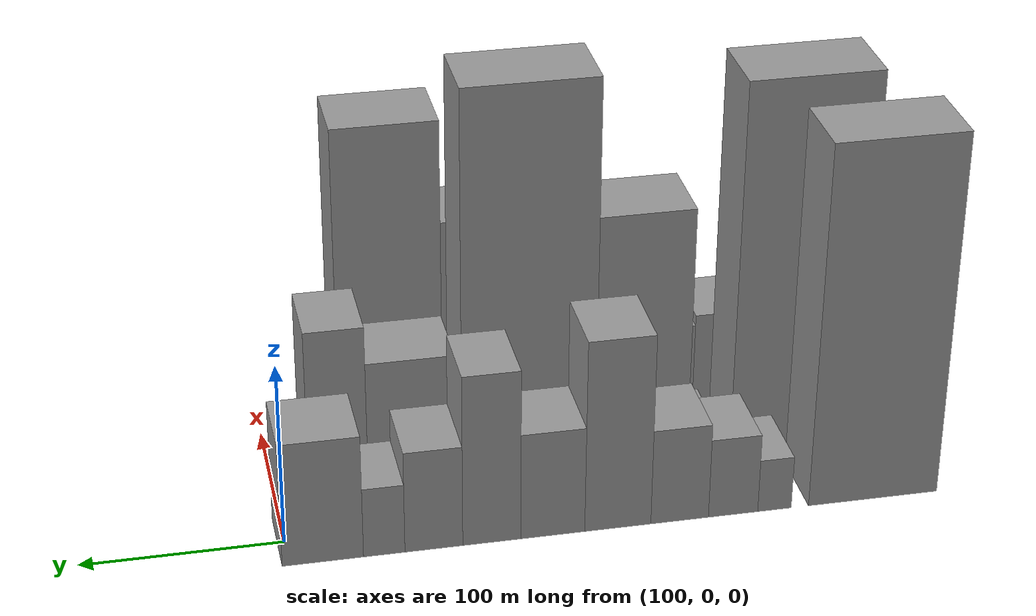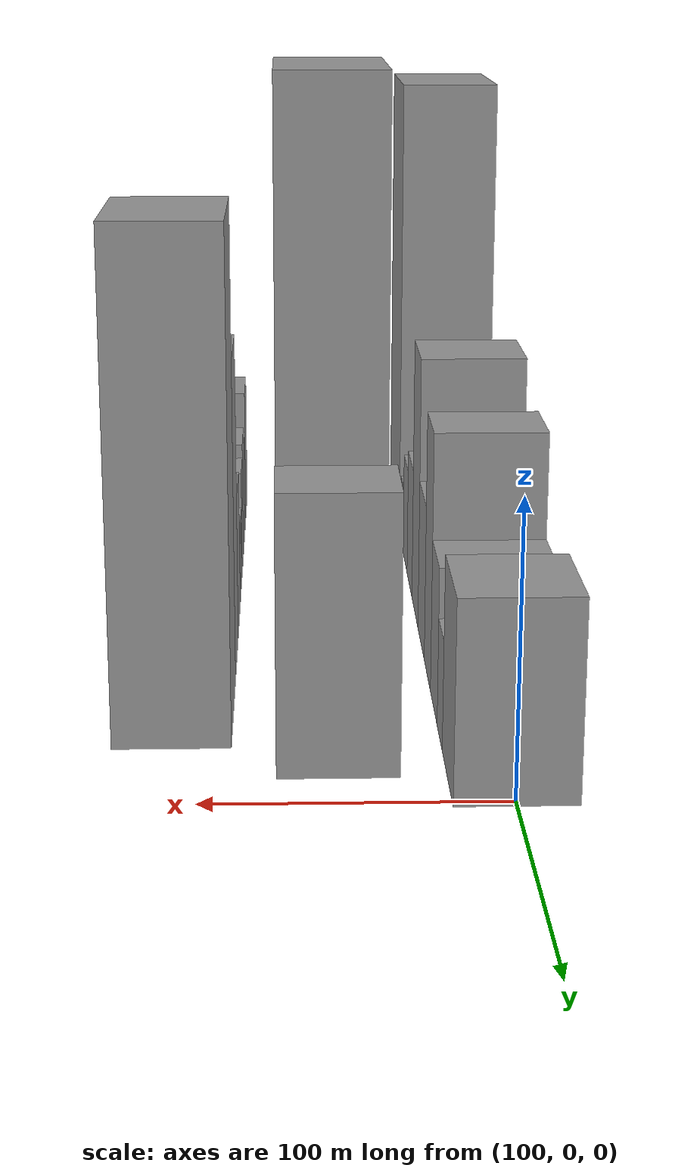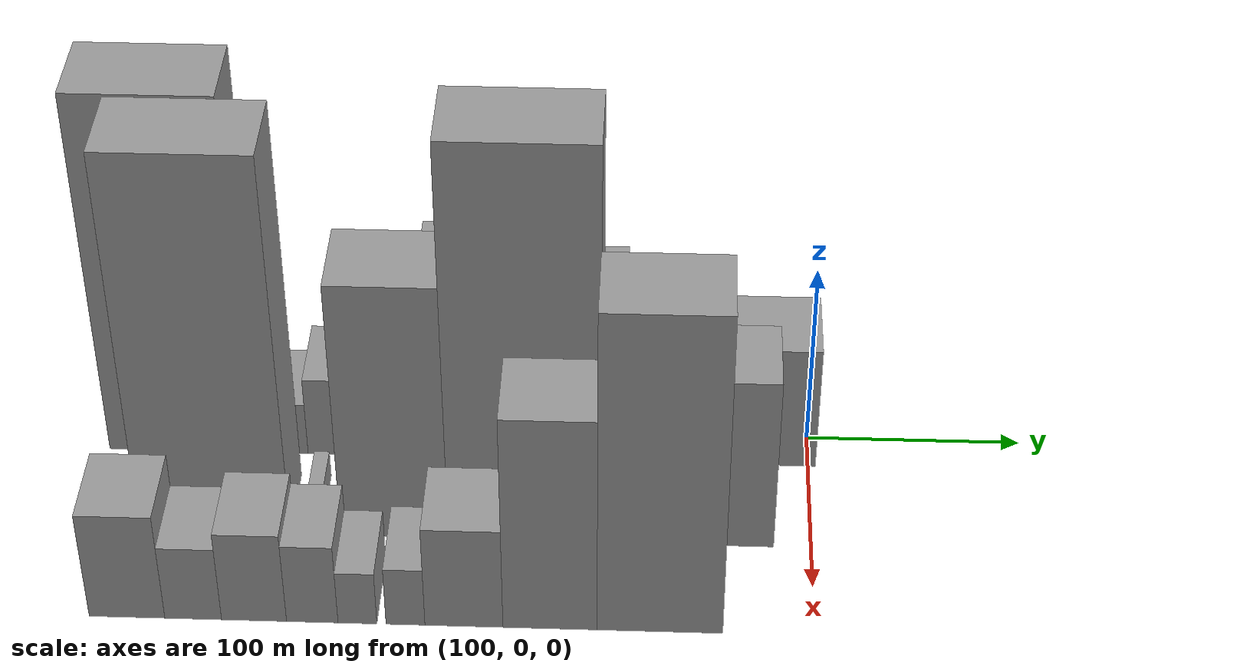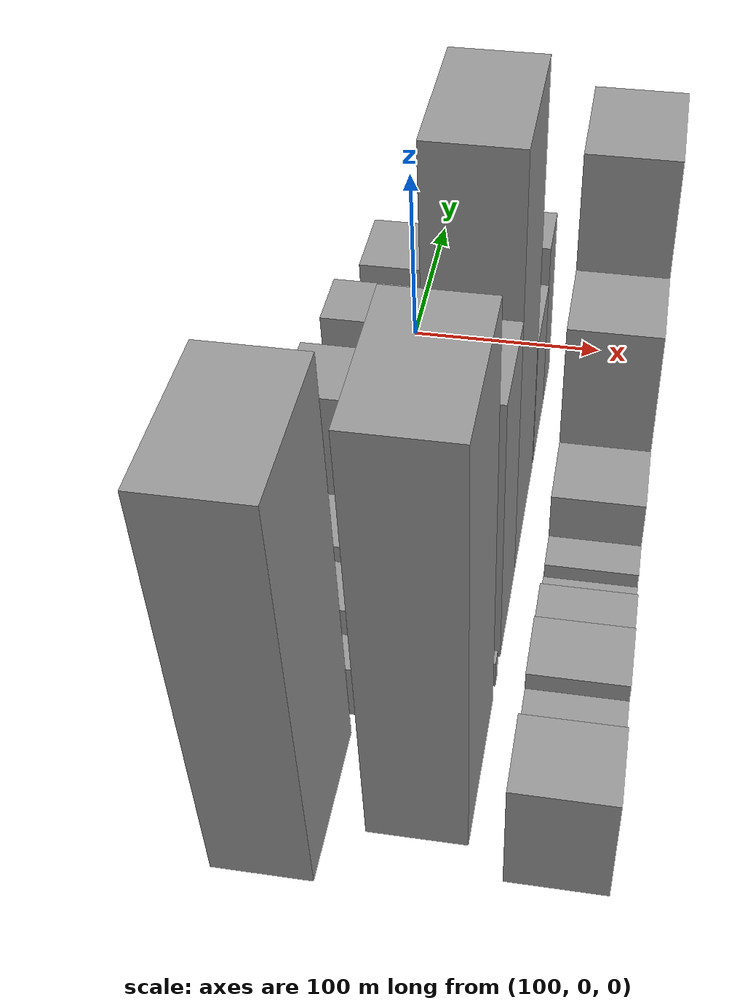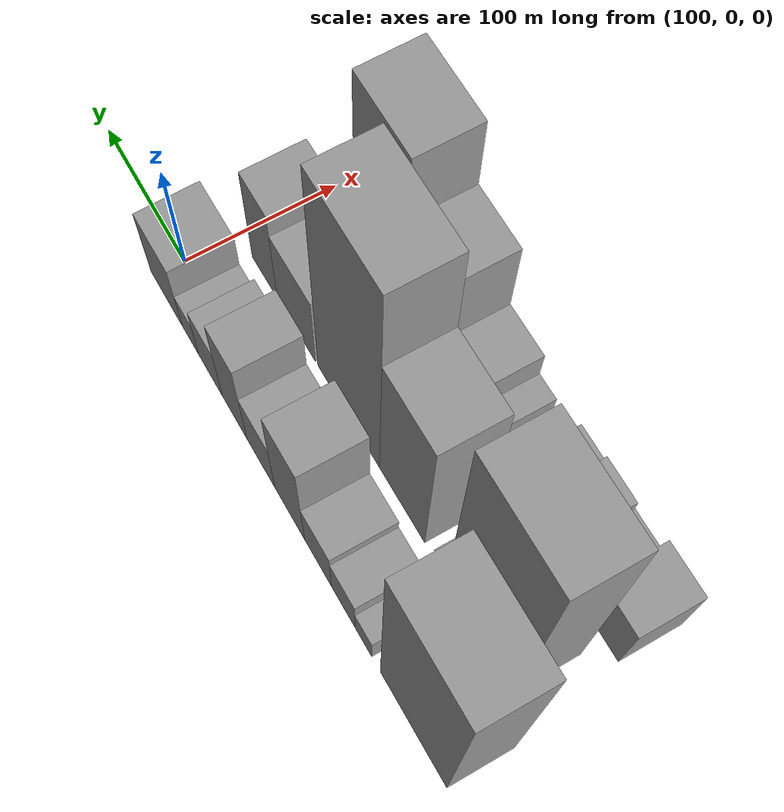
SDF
<sdf version="1.6">
 <world name="default">
  <model name="building_8">
   <static>1</static>
   <pose>100.0000 -294.7436 0 0.000000 0.000000 0.000000</pose>
   <link name="link">
    <pose>0 0 100.50 0 0 0</pose>
    <collision name="collision"><geometry><box><size>40.0000 67.3630 201.0000</size></box></geometry></collision>
    <visual name="visual">
     <cast_shadows>0</cast_shadows>
     <geometry><box><size>40.0000 67.3630 201.0000</size></box></geometry>
     <material>
      <script>
       <uri>model://grey_wall/materials/scripts</uri>
       <uri>model://grey_wall/materials/textures</uri>
       <name>vrc/grey_wall</name>
      </script>
     </material>
    </visual>
   </link>
  </model>
  <model name="building_9">
   <static>1</static>
   <pose>100.0000 -243.3653 0 0.000000 0.000000 0.000000</pose>
   <link name="link">
    <pose>0 0 15.00 0 0 0</pose>
    <collision name="collision"><geometry><box><size>40.0000 17.3937 30.0000</size></box></geometry></collision>
    <visual name="visual">
     <cast_shadows>0</cast_shadows>
     <geometry><box><size>40.0000 17.3937 30.0000</size></box></geometry>
     <material>
      <script>
       <uri>model://grey_wall/materials/scripts</uri>
       <uri>model://grey_wall/materials/textures</uri>
       <name>vrc/grey_wall</name>
      </script>
     </material>
    </visual>
   </link>
  </model>
  <model name="building_10">
   <static>1</static>
   <pose>100.0000 -221.9480 0 0.000000 0.000000 0.000000</pose>
   <link name="link">
    <pose>0 0 22.50 0 0 0</pose>
    <collision name="collision"><geometry><box><size>40.0000 25.4409 45.0000</size></box></geometry></collision>
    <visual name="visual">
     <cast_shadows>0</cast_shadows>
     <geometry><box><size>40.0000 25.4409 45.0000</size></box></geometry>
     <material>
      <script>
       <uri>model://grey_wall/materials/scripts</uri>
       <uri>model://grey_wall/materials/textures</uri>
       <name>vrc/grey_wall</name>
      </script>
     </material>
    </visual>
   </link>
  </model>
  <model name="building_11">
   <static>1</static>
   <pose>100.0000 -194.4827 0 0.000000 0.000000 0.000000</pose>
   <link name="link">
    <pose>0 0 27.00 0 0 0</pose>
    <collision name="collision"><geometry><box><size>40.0000 29.4895 54.0000</size></box></geometry></collision>
    <visual name="visual">
     <cast_shadows>0</cast_shadows>
     <geometry><box><size>40.0000 29.4895 54.0000</size></box></geometry>
     <material>
      <script>
       <uri>model://grey_wall/materials/scripts</uri>
       <uri>model://grey_wall/materials/textures</uri>
       <name>vrc/grey_wall</name>
      </script>
     </material>
    </visual>
   </link>
  </model>
  <model name="building_12">
   <static>1</static>
   <pose>100.0000 -162.9726 0 0.000000 0.000000 0.000000</pose>
   <link name="link">
    <pose>0 0 54.00 0 0 0</pose>
    <collision name="collision"><geometry><box><size>40.0000 33.5308 108.0000</size></box></geometry></collision>
    <visual name="visual">
     <cast_shadows>0</cast_shadows>
     <geometry><box><size>40.0000 33.5308 108.0000</size></box></geometry>
     <material>
      <script>
       <uri>model://grey_wall/materials/scripts</uri>
       <uri>model://grey_wall/materials/textures</uri>
       <name>vrc/grey_wall</name>
      </script>
     </material>
    </visual>
   </link>
  </model>
  <model name="building_13">
   <static>1</static>
   <pose>100.0000 -130.0925 0 0.000000 0.000000 0.000000</pose>
   <link name="link">
    <pose>0 0 30.00 0 0 0</pose>
    <collision name="collision"><geometry><box><size>40.0000 32.2293 60.0000</size></box></geometry></collision>
    <visual name="visual">
     <cast_shadows>0</cast_shadows>
     <geometry><box><size>40.0000 32.2293 60.0000</size></box></geometry>
     <material>
      <script>
       <uri>model://grey_wall/materials/scripts</uri>
       <uri>model://grey_wall/materials/textures</uri>
       <name>vrc/grey_wall</name>
      </script>
     </material>
    </visual>
   </link>
  </model>
  <model name="building_14">
   <static>1</static>
   <pose>100.0000 -99.5629 0 0.000000 0.000000 0.000000</pose>
   <link name="link">
    <pose>0 0 48.00 0 0 0</pose>
    <collision name="collision"><geometry><box><size>40.0000 28.8300 96.0000</size></box></geometry></collision>
    <visual name="visual">
     <cast_shadows>0</cast_shadows>
     <geometry><box><size>40.0000 28.8300 96.0000</size></box></geometry>
     <material>
      <script>
       <uri>model://grey_wall/materials/scripts</uri>
       <uri>model://grey_wall/materials/textures</uri>
       <name>vrc/grey_wall</name>
      </script>
     </material>
    </visual>
   </link>
  </model>
  <model name="building_15">
   <static>1</static>
   <pose>100.0000 -70.8435 0 0.000000 0.000000 0.000000</pose>
   <link name="link">
    <pose>0 0 28.50 0 0 0</pose>
    <collision name="collision"><geometry><box><size>40.0000 28.6087 57.0000</size></box></geometry></collision>
    <visual name="visual">
     <cast_shadows>0</cast_shadows>
     <geometry><box><size>40.0000 28.6087 57.0000</size></box></geometry>
     <material>
      <script>
       <uri>model://grey_wall/materials/scripts</uri>
       <uri>model://grey_wall/materials/textures</uri>
       <name>vrc/grey_wall</name>
      </script>
     </material>
    </visual>
   </link>
  </model>
  <model name="building_16">
   <static>1</static>
   <pose>100.0000 -46.3662 0 0.000000 0.000000 0.000000</pose>
   <link name="link">
    <pose>0 0 19.50 0 0 0</pose>
    <collision name="collision"><geometry><box><size>40.0000 20.3460 39.0000</size></box></geometry></collision>
    <visual name="visual">
     <cast_shadows>0</cast_shadows>
     <geometry><box><size>40.0000 20.3460 39.0000</size></box></geometry>
     <material>
      <script>
       <uri>model://grey_wall/materials/scripts</uri>
       <uri>model://grey_wall/materials/textures</uri>
       <name>vrc/grey_wall</name>
      </script>
     </material>
    </visual>
   </link>
  </model>
  <model name="building_17">
   <static>1</static>
   <pose>100.0000 -16.3731 0 0.000000 0.000000 0.000000</pose>
   <link name="link">
    <pose>0 0 34.50 0 0 0</pose>
    <collision name="collision"><geometry><box><size>40.0000 39.6402 69.0000</size></box></geometry></collision>
    <visual name="visual">
     <cast_shadows>0</cast_shadows>
     <geometry><box><size>40.0000 39.6402 69.0000</size></box></geometry>
     <material>
      <script>
       <uri>model://grey_wall/materials/scripts</uri>
       <uri>model://grey_wall/materials/textures</uri>
       <name>vrc/grey_wall</name>
      </script>
     </material>
    </visual>
   </link>
  </model>
  <model name="building_43">
   <static>1</static>
   <pose>155.0000 -270.3994 0 0.000000 0.000000 0.000000</pose>
   <link name="link">
    <pose>0 0 105.00 0 0 0</pose>
    <collision name="collision"><geometry><box><size>40.0000 68.9399 210.0000</size></box></geometry></collision>
    <visual name="visual">
     <cast_shadows>0</cast_shadows>
     <geometry><box><size>40.0000 68.9399 210.0000</size></box></geometry>
     <material>
      <script>
       <uri>model://grey_wall/materials/scripts</uri>
       <uri>model://grey_wall/materials/textures</uri>
       <name>vrc/grey_wall</name>
      </script>
     </material>
    </visual>
   </link>
  </model>
  <model name="building_44">
   <static>1</static>
   <pose>155.0000 -225.4750 0 0.000000 0.000000 0.000000</pose>
   <link name="link">
    <pose>0 0 7.50 0 0 0</pose>
    <collision name="collision"><geometry><box><size>40.0000 6.9090 15.0000</size></box></geometry></collision>
    <visual name="visual">
     <cast_shadows>0</cast_shadows>
     <geometry><box><size>40.0000 6.9090 15.0000</size></box></geometry>
     <material>
      <script>
       <uri>model://grey_wall/materials/scripts</uri>
       <uri>model://grey_wall/materials/textures</uri>
       <name>vrc/grey_wall</name>
      </script>
     </material>
    </visual>
   </link>
  </model>
  <model name="building_45">
   <static>1</static>
   <pose>155.0000 -188.6110 0 0.000000 0.000000 0.000000</pose>
   <link name="link">
    <pose>0 0 72.00 0 0 0</pose>
    <collision name="collision"><geometry><box><size>40.0000 48.8191 144.0000</size></box></geometry></collision>
    <visual name="visual">
     <cast_shadows>0</cast_shadows>
     <geometry><box><size>40.0000 48.8191 144.0000</size></box></geometry>
     <material>
      <script>
       <uri>model://grey_wall/materials/scripts</uri>
       <uri>model://grey_wall/materials/textures</uri>
       <name>vrc/grey_wall</name>
      </script>
     </material>
    </visual>
   </link>
  </model>
  <model name="building_46">
   <static>1</static>
   <pose>155.0000 -129.6218 0 0.000000 0.000000 0.000000</pose>
   <link name="link">
    <pose>0 0 109.50 0 0 0</pose>
    <collision name="collision"><geometry><box><size>40.0000 69.1592 219.0000</size></box></geometry></collision>
    <visual name="visual">
     <cast_shadows>0</cast_shadows>
     <geometry><box><size>40.0000 69.1592 219.0000</size></box></geometry>
     <material>
      <script>
       <uri>model://grey_wall/materials/scripts</uri>
       <uri>model://grey_wall/materials/textures</uri>
       <name>vrc/grey_wall</name>
      </script>
     </material>
    </visual>
   </link>
  </model>
  <model name="building_47">
   <static>1</static>
   <pose>155.0000 -69.5526 0 0.000000 0.000000 0.000000</pose>
   <link name="link">
    <pose>0 0 37.50 0 0 0</pose>
    <collision name="collision"><geometry><box><size>40.0000 44.9793 75.0000</size></box></geometry></collision>
    <visual name="visual">
     <cast_shadows>0</cast_shadows>
     <geometry><box><size>40.0000 44.9793 75.0000</size></box></geometry>
     <material>
      <script>
       <uri>model://grey_wall/materials/scripts</uri>
       <uri>model://grey_wall/materials/textures</uri>
       <name>vrc/grey_wall</name>
      </script>
     </material>
    </visual>
   </link>
  </model>
  <model name="building_48">
   <static>1</static>
   <pose>155.0000 -32.0475 0 0.000000 0.000000 0.000000</pose>
   <link name="link">
    <pose>0 0 48.00 0 0 0</pose>
    <collision name="collision"><geometry><box><size>40.0000 30.0308 96.0000</size></box></geometry></collision>
    <visual name="visual">
     <cast_shadows>0</cast_shadows>
     <geometry><box><size>40.0000 30.0308 96.0000</size></box></geometry>
     <material>
      <script>
       <uri>model://grey_wall/materials/scripts</uri>
       <uri>model://grey_wall/materials/textures</uri>
       <name>vrc/grey_wall</name>
      </script>
     </material>
    </visual>
   </link>
  </model>
  <model name="building_76">
   <static>1</static>
   <pose>210.0000 -301.1250 0 0.000000 0.000000 0.000000</pose>
   <link name="link">
    <pose>0 0 30.00 0 0 0</pose>
    <collision name="collision"><geometry><box><size>40.0000 33.3375 60.0000</size></box></geometry></collision>
    <visual name="visual">
     <cast_shadows>0</cast_shadows>
     <geometry><box><size>40.0000 33.3375 60.0000</size></box></geometry>
     <material>
      <script>
       <uri>model://grey_wall/materials/scripts</uri>
       <uri>model://grey_wall/materials/textures</uri>
       <name>vrc/grey_wall</name>
      </script>
     </material>
    </visual>
   </link>
  </model>
  <model name="building_77">
   <static>1</static>
   <pose>210.0000 -271.9601 0 0.000000 0.000000 0.000000</pose>
   <link name="link">
    <pose>0 0 21.00 0 0 0</pose>
    <collision name="collision"><geometry><box><size>40.0000 24.9923 42.0000</size></box></geometry></collision>
    <visual name="visual">
     <cast_shadows>0</cast_shadows>
     <geometry><box><size>40.0000 24.9923 42.0000</size></box></geometry>
     <material>
      <script>
       <uri>model://grey_wall/materials/scripts</uri>
       <uri>model://grey_wall/materials/textures</uri>
       <name>vrc/grey_wall</name>
      </script>
     </material>
    </visual>
   </link>
  </model>
  <model name="building_78">
   <static>1</static>
   <pose>210.0000 -245.1800 0 0.000000 0.000000 0.000000</pose>
   <link name="link">
    <pose>0 0 25.50 0 0 0</pose>
    <collision name="collision"><geometry><box><size>40.0000 28.5679 51.0000</size></box></geometry></collision>
    <visual name="visual">
     <cast_shadows>0</cast_shadows>
     <geometry><box><size>40.0000 28.5679 51.0000</size></box></geometry>
     <material>
      <script>
       <uri>model://grey_wall/materials/scripts</uri>
       <uri>model://grey_wall/materials/textures</uri>
       <name>vrc/grey_wall</name>
      </script>
     </material>
    </visual>
   </link>
  </model>
  <model name="building_79">
   <static>1</static>
   <pose>210.0000 -219.5943 0 0.000000 0.000000 0.000000</pose>
   <link name="link">
    <pose>0 0 22.50 0 0 0</pose>
    <collision name="collision"><geometry><box><size>40.0000 22.6035 45.0000</size></box></geometry></collision>
    <visual name="visual">
     <cast_shadows>0</cast_shadows>
     <geometry><box><size>40.0000 22.6035 45.0000</size></box></geometry>
     <material>
      <script>
       <uri>model://grey_wall/materials/scripts</uri>
       <uri>model://grey_wall/materials/textures</uri>
       <name>vrc/grey_wall</name>
      </script>
     </material>
    </visual>
   </link>
  </model>
  <model name="building_80">
   <static>1</static>
   <pose>210.0000 -199.7600 0 0.000000 0.000000 0.000000</pose>
   <link name="link">
    <pose>0 0 15.00 0 0 0</pose>
    <collision name="collision"><geometry><box><size>40.0000 17.0651 30.0000</size></box></geometry></collision>
    <visual name="visual">
     <cast_shadows>0</cast_shadows>
     <geometry><box><size>40.0000 17.0651 30.0000</size></box></geometry>
     <material>
      <script>
       <uri>model://grey_wall/materials/scripts</uri>
       <uri>model://grey_wall/materials/textures</uri>
       <name>vrc/grey_wall</name>
      </script>
     </material>
    </visual>
   </link>
  </model>
  <model name="building_81">
   <static>1</static>
   <pose>210.0000 -178.7009 0 0.000000 0.000000 0.000000</pose>
   <link name="link">
    <pose>0 0 16.50 0 0 0</pose>
    <collision name="collision"><geometry><box><size>40.0000 17.0532 33.0000</size></box></geometry></collision>
    <visual name="visual">
     <cast_shadows>0</cast_shadows>
     <geometry><box><size>40.0000 17.0532 33.0000</size></box></geometry>
     <material>
      <script>
       <uri>model://grey_wall/materials/scripts</uri>
       <uri>model://grey_wall/materials/textures</uri>
       <name>vrc/grey_wall</name>
      </script>
     </material>
    </visual>
   </link>
  </model>
  <model name="building_82">
   <static>1</static>
   <pose>210.0000 -153.1122 0 0.000000 0.000000 0.000000</pose>
   <link name="link">
    <pose>0 0 28.50 0 0 0</pose>
    <collision name="collision"><geometry><box><size>40.0000 34.1241 57.0000</size></box></geometry></collision>
    <visual name="visual">
     <cast_shadows>0</cast_shadows>
     <geometry><box><size>40.0000 34.1241 57.0000</size></box></geometry>
     <material>
      <script>
       <uri>model://grey_wall/materials/scripts</uri>
       <uri>model://grey_wall/materials/textures</uri>
       <name>vrc/grey_wall</name>
      </script>
     </material>
    </visual>
   </link>
  </model>
  <model name="building_83">
   <static>1</static>
   <pose>210.0000 -115.4934 0 0.000000 0.000000 0.000000</pose>
   <link name="link">
    <pose>0 0 60.00 0 0 0</pose>
    <collision name="collision"><geometry><box><size>40.0000 41.1135 120.0000</size></box></geometry></collision>
    <visual name="visual">
     <cast_shadows>0</cast_shadows>
     <geometry><box><size>40.0000 41.1135 120.0000</size></box></geometry>
     <material>
      <script>
       <uri>model://grey_wall/materials/scripts</uri>
       <uri>model://grey_wall/materials/textures</uri>
       <name>vrc/grey_wall</name>
      </script>
     </material>
    </visual>
   </link>
  </model>
  <model name="building_84">
   <static>1</static>
   <pose>210.0000 -67.5174 0 0.000000 0.000000 0.000000</pose>
   <link name="link">
    <pose>0 0 88.50 0 0 0</pose>
    <collision name="collision"><geometry><box><size>40.0000 54.8387 177.0000</size></box></geometry></collision>
    <visual name="visual">
     <cast_shadows>0</cast_shadows>
     <geometry><box><size>40.0000 54.8387 177.0000</size></box></geometry>
     <material>
      <script>
       <uri>model://grey_wall/materials/scripts</uri>
       <uri>model://grey_wall/materials/textures</uri>
       <name>vrc/grey_wall</name>
      </script>
     </material>
    </visual>
   </link>
  </model>
 </world>
</sdf>
